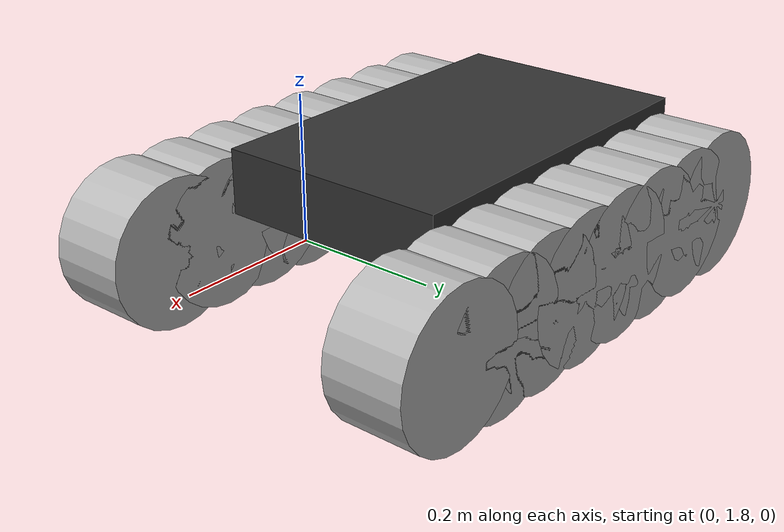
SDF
<?xml version="1.0" ?>
<sdf version="1.6">
<odom_publish_frequency>1</odom_publish_frequency>
    <topic>cmd_vel</topic>
    <model name="raposaNG">
      <pose frame=''>0 2 0.071917 0 0 0</pose>
      <link name='base_link'>
          <pose frame=''>0 0 0 0 -0 0</pose>
          <inertial>
              <pose frame=''>-0.062 0 0.03 1.5708 -0 0</pose>
              <mass>13.14</mass>
              <inertia>
                  <ixx>0.10019</ixx>
                  <ixy>0</ixy>
                  <ixz>0</ixz>
                  <iyy>0.345043</iyy>
                  <iyz>0</iyz>
                  <izz>0.302044</izz>
              </inertia>
          </inertial>
          <collision name='base_link_collision'>
              <pose frame=''>-0.062 0 0.08 0 -0 0</pose>
              <geometry>
                  <box>
                      <size>0.46017 0.2093 0.08</size>
                  </box>
              </geometry>
          </collision>
          <visual name='base_link_visual'>
              <pose frame=''>-0.062 0 0.08 0 -0 0</pose>
              <geometry>
                  <box>
                      <size>0.46017 0.29093 0.08</size>
                  </box>
              </geometry>
              <material>
                <ambient>0.2 0.2 0.2 1</ambient>
                <diffuse>0.2 0.2 0.2 1</diffuse>
                <specular>0.1 0.1 0.1 1</specular>
              </material>
          </visual>
          <self_collide>0</self_collide>
          <gravity>1</gravity>
          <kinematic>0</kinematic>

          <sensor name="imu_sensor" type="imu">
            <always_on>1</always_on>
            <update_rate>1000</update_rate>
          </sensor>
      </link>

      <link name='left_track'>
          <pose frame=''>0 0.1985 0 0 -0 0</pose>
          <inertial>
              <mass>2.06</mass>
              <inertia>
                  <ixx>0.002731</ixx>
                  <ixy>0</ixy>
                  <ixz>0</ixz>
                  <iyy>0.032554</iyy>
                  <iyz>0</iyz>
                  <izz>0.031391</izz>
              </inertia>
          </inertial>
          <collision name='left_track_collision'>
              <pose frame=''>0 0 0.01855 1.5707963267948966  -0 1.5707963267948966</pose>
              <geometry>
                  <box>
                      <size>0.009728 0.018094 0.05</size>
                  </box>
              </geometry>
          </collision>
      </link>
      <joint name='left_track_j' type='fixed'>
          <child>left_track</child>
          <parent>base_link</parent>
      </joint>
      <link name='left_track_wheel1'>
          <pose frame=''>0.25 0.1985 0.01855 0 -0 0</pose>
          <inertial>
              <mass>0.5</mass>
              <inertia>
                  <ixx>0.001</ixx>
                  <ixy>0</ixy>
                  <ixz>0</ixz>
                  <iyy>0.001</iyy>
                  <iyz>0</iyz>
                  <izz>0.001</izz>
              </inertia>
          </inertial>
          <collision name='left_track_wheel1_collision'>
              <pose frame=''>0 0 0 1.5707963267948966 -0 0</pose>
              <geometry>
                  <cylinder>
                      <length>0.09728</length>
                      <radius>0.09047</radius>
                  </cylinder>
              </geometry>
              <surface>
                  <friction>
                      <ode>
                          <mu>0.5</mu>
                          <mu2>3.19858</mu2>
                          <fdir1>0 0 1</fdir1>
                          <slip1>0</slip1>
                          <slip2>0</slip2>
                      </ode>
                  </friction>
              </surface>
          </collision>
          <visual name='left_track_wheel1_visual'>
              <pose frame=''>0 0 0 1.5707963267948966 -0 0</pose>
              <geometry>
                  <cylinder>
                      <length>0.09728</length>
                      <radius>0.09047</radius>
                  </cylinder>
              </geometry>
          </visual>
      </link>
      <joint name='left_track_wheel1_j' type='revolute'>
          <child>left_track_wheel1</child>
          <parent>left_track</parent>
          <axis>
              <xyz>0 1 0</xyz>
              <limit>
                  <lower>-1e+16</lower>
                  <upper>1e+16</upper>
              </limit>
          </axis>
      </joint>
      <link name='left_track_wheel2'>
          <pose frame=''>0.1786 0.1985 0.01855 0 -0 0</pose>
          <inertial>
              <mass>0.5</mass>
              <inertia>
                  <ixx>0.001</ixx>
                  <ixy>0</ixy>
                  <ixz>0</ixz>
                  <iyy>0.001</iyy>
                  <iyz>0</iyz>
                  <izz>0.001</izz>
              </inertia>
          </inertial>
          <collision name='left_track_wheel2_collision'>
              <pose frame=''>0 0 0 1.5707963267948966 -0 0</pose>
              <geometry>
                  <cylinder>
                      <length>0.09728</length>
                      <radius>0.09047</radius>
                  </cylinder>
              </geometry>
              <surface>
                  <friction>
                      <ode>
                          <mu>0.5</mu>
                          <mu2>3.19858</mu2>
                          <fdir1>0 0 1</fdir1>
                          <slip1>0</slip1>
                          <slip2>0</slip2>
                      </ode>
                  </friction>
              </surface>
          </collision>
          <visual name='left_track_wheel2_visual'>
              <pose frame=''>0 0 0 1.5707963267948966 -0 0</pose>
              <geometry>
                  <cylinder>
                      <length>0.09728</length>
                      <radius>0.09047</radius>
                  </cylinder>
              </geometry>
          </visual>
      </link>
      <joint name='left_track_wheel2_j' type='revolute'>
          <child>left_track_wheel2</child>
          <parent>left_track</parent>
          <axis>
              <xyz>0 1 0</xyz>
              <limit>
                  <lower>-1e+16</lower>
                  <upper>1e+16</upper>
              </limit>
          </axis>
      </joint>
      <link name='left_track_wheel3'>
          <pose frame=''>0.1072 0.1985 0.01855 0 -0 0</pose>
          <inertial>
              <mass>0.5</mass>
              <inertia>
                  <ixx>0.001</ixx>
                  <ixy>0</ixy>
                  <ixz>0</ixz>
                  <iyy>0.001</iyy>
                  <iyz>0</iyz>
                  <izz>0.001</izz>
              </inertia>
          </inertial>
          <collision name='left_track_wheel3_collision'>
              <pose frame=''>0 0 0 1.5707963267948966 -0 0</pose>
              <geometry>
                  <cylinder>
                      <length>0.09728</length>
                      <radius>0.09047</radius>
                  </cylinder>
              </geometry>
              <surface>
                  <friction>
                      <ode>
                          <mu>0.5</mu>
                          <mu2>3.19858</mu2>
                          <fdir1>0 0 1</fdir1>
                          <slip1>0</slip1>
                          <slip2>0</slip2>
                      </ode>
                  </friction>
              </surface>
          </collision>
          <visual name='left_track_wheel3_visual'>
              <pose frame=''>0 0 0 1.5707963267948966 -0 0</pose>
              <geometry>
                  <cylinder>
                      <length>0.09728</length>
                      <radius>0.09047</radius>
                  </cylinder>
              </geometry>
          </visual>
      </link>
      <joint name='left_track_wheel3_j' type='revolute'>
          <child>left_track_wheel3</child>
          <parent>left_track</parent>
          <axis>
              <xyz>0 1 0</xyz>
              <limit>
                  <lower>-1e+16</lower>
                  <upper>1e+16</upper>
              </limit>
          </axis>
      </joint>
      <link name='left_track_wheel4'>
          <pose frame=''>-0.25 0.1985 0.01855 0 -0 0</pose>
          <inertial>
              <mass>0.5</mass>
              <inertia>
                  <ixx>0.001</ixx>
                  <ixy>0</ixy>
                  <ixz>0</ixz>
                  <iyy>0.001</iyy>
                  <iyz>0</iyz>
                  <izz>0.001</izz>
              </inertia>
          </inertial>
          <collision name='left_track_wheel4_collision'>
              <pose frame=''>0 0 0 1.5707963267948966 -0 0</pose>
              <geometry>
                  <cylinder>
                      <length>0.09728</length>
                      <radius>0.09047</radius>
                  </cylinder>
              </geometry>
              <surface>
                  <friction>
                      <ode>
                          <mu>0.5</mu>
                          <mu2>3.19858</mu2>
                          <fdir1>0 0 1</fdir1>
                          <slip1>0</slip1>
                          <slip2>0</slip2>
                      </ode>
                  </friction>
              </surface>
          </collision>
          <visual name='left_track_wheel4_visual'>
              <pose frame=''>0 0 0 1.5707963267948966 -0 0</pose>
              <geometry>
                  <cylinder>
                      <length>0.09728</length>
                      <radius>0.09047</radius>
                  </cylinder>
              </geometry>
          </visual>
      </link>
      <joint name='left_track_wheel4_j' type='revolute'>
          <child>left_track_wheel4</child>
          <parent>left_track</parent>
          <axis>
              <xyz>0 1 0</xyz>
              <limit>
                  <lower>-1e+16</lower>
                  <upper>1e+16</upper>
              </limit>
          </axis>
      </joint>
      <link name='left_track_wheel5'>
          <pose frame=''>-0.0358 0.1985 0.01855 0 -0 0</pose>
          <inertial>
              <mass>0.5</mass>
              <inertia>
                  <ixx>0.001</ixx>
                  <ixy>0</ixy>
                  <ixz>0</ixz>
                  <iyy>0.001</iyy>
                  <iyz>0</iyz>
                  <izz>0.001</izz>
              </inertia>
          </inertial>
          <collision name='left_track_wheel5_collision'>
              <pose frame=''>0 0 0 1.5707963267948966 -0 0</pose>
              <geometry>
                  <cylinder>
                      <length>0.09728</length>
                      <radius>0.09047</radius>
                  </cylinder>
              </geometry>
              <surface>
                  <friction>
                      <ode>
                          <mu>0.5</mu>
                          <mu2>3.19858</mu2>
                          <fdir1>0 0 1</fdir1>
                          <slip1>0</slip1>
                          <slip2>0</slip2>
                      </ode>
                  </friction>
              </surface>
          </collision>
          <visual name='left_track_wheel5_visual'>
              <pose frame=''>0 0 0 1.5707963267948966 -0 0</pose>
              <geometry>
                  <cylinder>
                      <length>0.09728</length>
                      <radius>0.09047</radius>
                  </cylinder>
              </geometry>
          </visual>
      </link>
      <joint name='left_track_wheel5_j' type='revolute'>
          <child>left_track_wheel5</child>
          <parent>left_track</parent>
          <axis>
              <xyz>0 1 0</xyz>
              <limit>
                  <lower>-1e+16</lower>
                  <upper>1e+16</upper>
              </limit>
          </axis>
      </joint>
      <link name='left_track_wheel6'>
          <pose frame=''>-0.1072 0.1985 0.01855 0 -0 0</pose>
          <inertial>
              <mass>0.5</mass>
              <inertia>
                  <ixx>0.001</ixx>
                  <ixy>0</ixy>
                  <ixz>0</ixz>
                  <iyy>0.001</iyy>
                  <iyz>0</iyz>
                  <izz>0.001</izz>
              </inertia>
          </inertial>
          <collision name='left_track_wheel6_collision'>
              <pose frame=''>0 0 0 1.5707963267948966 -0 0</pose>
              <geometry>
                  <cylinder>
                      <length>0.09728</length>
                      <radius>0.09047</radius>
                  </cylinder>
              </geometry>
              <surface>
                  <friction>
                      <ode>
                          <mu>0.5</mu>
                          <mu2>3.19858</mu2>
                          <fdir1>0 0 1</fdir1>
                          <slip1>0</slip1>
                          <slip2>0</slip2>
                      </ode>
                  </friction>
              </surface>
          </collision>
          <visual name='left_track_wheel6_visual'>
              <pose frame=''>0 0 0 1.5707963267948966 -0 0</pose>
              <geometry>
                  <cylinder>
                      <length>0.09728</length>
                      <radius>0.09047</radius>
                  </cylinder>
              </geometry>
          </visual>
          <gravity>1</gravity>
          <velocity_decay/>
          <kinematic>0</kinematic>
      </link>
      <joint name='left_track_wheel6_j' type='revolute'>
          <child>left_track_wheel6</child>
          <parent>left_track</parent>
          <axis>
              <xyz>0 1 0</xyz>
              <limit>
                  <lower>-1e+16</lower>
                  <upper>1e+16</upper>
              </limit>
          </axis>
      </joint>
      <link name='left_track_wheel7'>
          <pose frame=''>-0.1786 0.1985 0.01855 0 -0 0</pose>
          <inertial>
              <mass>0.5</mass>
              <inertia>
                  <ixx>0.001</ixx>
                  <ixy>0</ixy>
                  <ixz>0</ixz>
                  <iyy>0.001</iyy>
                  <iyz>0</iyz>
                  <izz>0.001</izz>
              </inertia>
          </inertial>
          <collision name='left_track_wheel7_collision'>
              <pose frame=''>0 0 0 1.5707963267948966 -0 0</pose>
              <geometry>
                  <cylinder>
                      <length>0.09728</length>
                      <radius>0.09047</radius>
                  </cylinder>
              </geometry>
              <surface>
                  <friction>
                      <ode>
                          <mu>0.5</mu>
                          <mu2>3.19858</mu2>
                          <fdir1>0 0 1</fdir1>
                          <slip1>0</slip1>
                          <slip2>0</slip2>
                      </ode>
                  </friction>
              </surface>
          </collision>
          <visual name='left_track_wheel7_visual'>
              <pose frame=''>0 0 0 1.5707963267948966 -0 0</pose>
              <geometry>
                  <cylinder>
                      <length>0.09728</length>
                      <radius>0.09047</radius>
                  </cylinder>
              </geometry>
          </visual>
      </link>
      <joint name='left_track_wheel7_j' type='revolute'>
          <child>left_track_wheel7</child>
          <parent>left_track</parent>
          <axis>
              <xyz>0 1 0</xyz>
              <limit>
                  <lower>-1e+16</lower>
                  <upper>1e+16</upper>
              </limit>
          </axis>
      </joint>
      <link name='left_track_wheel8'>
          <pose frame=''>0.0358 0.1985 0.01855 0 -0 0</pose>
          <inertial>
              <mass>0.5</mass>
              <inertia>
                  <ixx>0.001</ixx>
                  <ixy>0</ixy>
                  <ixz>0</ixz>
                  <iyy>0.001</iyy>
                  <iyz>0</iyz>
                  <izz>0.001</izz>
              </inertia>
          </inertial>
          <collision name='left_track_wheel8_collision'>
              <pose frame=''>0 0 0 1.5707963267948966 -0 0</pose>
              <geometry>
                  <cylinder>
                      <length>0.09728</length>
                      <radius>0.09047</radius>
                  </cylinder>
              </geometry>
              <surface>
                  <friction>
                      <ode>
                          <mu>0.5</mu>
                          <mu2>3.19858</mu2>
                          <fdir1>0 0 1</fdir1>
                          <slip1>0</slip1>
                          <slip2>0</slip2>
                      </ode>
                  </friction>
              </surface>
          </collision>
          <visual name='left_track_wheel8_visual'>
              <pose frame=''>0 0 0 1.5707963267948966 -0 0</pose>
              <geometry>
                  <cylinder>
                      <length>0.09728</length>
                      <radius>0.09047</radius>
                  </cylinder>
              </geometry>
          </visual>
      </link>
      <joint name='left_track_wheel8_j' type='revolute'>
          <child>left_track_wheel8</child>
          <parent>left_track</parent>
          <axis>
              <xyz>0 1 0</xyz>
              <limit>
                  <lower>-1e+16</lower>
                  <upper>1e+16</upper>
              </limit>
          </axis>
      </joint>

      <link name='right_track'>
          <pose frame=''>0 -0.1985 0 0 -0 0</pose>
          <inertial>
              <mass>2.06</mass>
              <inertia>
                  <ixx>0.002731</ixx>
                  <ixy>0</ixy>
                  <ixz>0</ixz>
                  <iyy>0.032554</iyy>
                  <iyz>0</iyz>
                  <izz>0.031391</izz>
              </inertia>
          </inertial>
          <collision name='right_track_collision'>
              <pose frame=''>0 0 0.01855 1.5707963267948966  -0 1.5707963267948966</pose>
              <geometry>
                  <box>
                      <size>0.009728 0.018094 0.05</size>
                  </box>
              </geometry>
          </collision>
      </link>
      <joint name='right_track_j' type='fixed'>
          <child>right_track</child>
          <parent>base_link</parent>
      </joint>

      <link name='right_track_wheel1'>
          <pose frame=''>0.25 -0.1985 0.01855 0 -0 0</pose>
          <inertial>
              <mass>0.5</mass>
              <inertia>
                  <ixx>0.001</ixx>
                  <ixy>0</ixy>
                  <ixz>0</ixz>
                  <iyy>0.001</iyy>
                  <iyz>0</iyz>
                  <izz>0.001</izz>
              </inertia>
          </inertial>
          <collision name='right_track_wheel1_collision'>
              <pose frame=''>0 0 0 1.5707963267948966 -0 0</pose>
              <geometry>
                  <cylinder>
                      <length>0.09728</length>
                      <radius>0.09047</radius>
                  </cylinder>
              </geometry>
              <surface>
                  <friction>
                      <ode>
                          <mu>0.5</mu>
                          <mu2>3.19858</mu2>
                          <fdir1>0 0 1</fdir1>
                          <slip1>0</slip1>
                          <slip2>0</slip2>
                      </ode>
                  </friction>
              </surface>
          </collision>
          <visual name='right_track_wheel1_visual'>
              <pose frame=''>0 0 0 1.5707963267948966 -0 0</pose>
              <geometry>
                  <cylinder>
                      <length>0.09728</length>
                      <radius>0.09047</radius>
                  </cylinder>
              </geometry>
          </visual>
      </link>
      <joint name='right_track_wheel1_j' type='revolute'>
          <child>right_track_wheel1</child>
          <parent>right_track</parent>
          <axis>
              <xyz>0 1 0</xyz>
              <limit>
                  <lower>-1e+16</lower>
                  <upper>1e+16</upper>
              </limit>
          </axis>
      </joint>
      <link name='right_track_wheel2'>
          <pose frame=''>0.1786 -0.1985 0.01855 0 -0 0</pose>
          <inertial>
              <mass>0.5</mass>
              <inertia>
                  <ixx>0.001</ixx>
                  <ixy>0</ixy>
                  <ixz>0</ixz>
                  <iyy>0.001</iyy>
                  <iyz>0</iyz>
                  <izz>0.001</izz>
              </inertia>
          </inertial>
          <collision name='right_track_wheel2_collision'>
              <pose frame=''>0 0 0 1.5707963267948966 -0 0</pose>
              <geometry>
                  <cylinder>
                      <length>0.09728</length>
                      <radius>0.09047</radius>
                  </cylinder>
              </geometry>
              <surface>
                  <friction>
                      <ode>
                          <mu>0.5</mu>
                          <mu2>3.19858</mu2>
                          <fdir1>0 0 1</fdir1>
                          <slip1>0</slip1>
                          <slip2>0</slip2>
                      </ode>
                  </friction>
              </surface>
          </collision>
          <visual name='right_track_wheel2_visual'>
              <pose frame=''>0 0 0 1.5707963267948966 -0 0</pose>
              <geometry>
                  <cylinder>
                      <length>0.09728</length>
                      <radius>0.09047</radius>
                  </cylinder>
              </geometry>
          </visual>
      </link>
      <joint name='right_track_wheel2_j' type='revolute'>
          <child>right_track_wheel2</child>
          <parent>right_track</parent>
          <axis>
              <xyz>0 1 0</xyz>
              <limit>
                  <lower>-1e+16</lower>
                  <upper>1e+16</upper>
              </limit>
          </axis>
      </joint>
      <link name='right_track_wheel3'>
          <pose frame=''>0.1072 -0.1985 0.01855 0 -0 0</pose>
          <inertial>
              <mass>0.5</mass>
              <inertia>
                  <ixx>0.001</ixx>
                  <ixy>0</ixy>
                  <ixz>0</ixz>
                  <iyy>0.001</iyy>
                  <iyz>0</iyz>
                  <izz>0.001</izz>
              </inertia>
          </inertial>
          <collision name='right_track_wheel3_collision'>
              <pose frame=''>0 0 0 1.5707963267948966 -0 0</pose>
              <geometry>
                  <cylinder>
                      <length>0.09728</length>
                      <radius>0.09047</radius>
                  </cylinder>
              </geometry>
              <surface>
                  <friction>
                      <ode>
                          <mu>0.5</mu>
                          <mu2>3.19858</mu2>
                          <fdir1>0 0 1</fdir1>
                          <slip1>0</slip1>
                          <slip2>0</slip2>
                      </ode>
                  </friction>
              </surface>
          </collision>
          <visual name='right_track_wheel3_visual'>
              <pose frame=''>0 0 0 1.5707963267948966 -0 0</pose>
              <geometry>
                  <cylinder>
                      <length>0.09728</length>
                      <radius>0.09047</radius>
                  </cylinder>
              </geometry>
          </visual>
      </link>
      <joint name='right_track_wheel3_j' type='revolute'>
          <child>right_track_wheel3</child>
          <parent>right_track</parent>
          <axis>
              <xyz>0 1 0</xyz>
              <limit>
                  <lower>-1e+16</lower>
                  <upper>1e+16</upper>
              </limit>
          </axis>
      </joint>
      <link name='right_track_wheel4'>
          <pose frame=''>-0.25 -0.1985 0.01855 0 -0 0</pose>
          <inertial>
              <mass>0.5</mass>
              <inertia>
                  <ixx>0.001</ixx>
                  <ixy>0</ixy>
                  <ixz>0</ixz>
                  <iyy>0.001</iyy>
                  <iyz>0</iyz>
                  <izz>0.001</izz>
              </inertia>
          </inertial>
          <collision name='right_track_wheel4_collision'>
              <pose frame=''>0 0 0 1.5707963267948966 -0 0</pose>
              <geometry>
                  <cylinder>
                      <length>0.09728</length>
                      <radius>0.09047</radius>
                  </cylinder>
              </geometry>
              <surface>
                  <friction>
                      <ode>
                          <mu>0.5</mu>
                          <mu2>3.19858</mu2>
                          <fdir1>0 0 1</fdir1>
                          <slip1>0</slip1>
                          <slip2>0</slip2>
                      </ode>
                  </friction>
              </surface>
          </collision>
          <visual name='right_track_wheel4_visual'>
              <pose frame=''>0 0 0 1.5707963267948966 -0 0</pose>
              <geometry>
                  <cylinder>
                      <length>0.09728</length>
                      <radius>0.09047</radius>
                  </cylinder>
              </geometry>
          </visual>
      </link>
      <joint name='right_track_wheel4_j' type='revolute'>
          <child>right_track_wheel4</child>
          <parent>right_track</parent>
          <axis>
              <xyz>0 1 0</xyz>
              <limit>
                  <lower>-1e+16</lower>
                  <upper>1e+16</upper>
              </limit>
          </axis>
      </joint>
      <link name='right_track_wheel5'>
          <pose frame=''>-0.0358 -0.1985 0.01855 0 -0 0</pose>
          <inertial>
              <mass>0.5</mass>
              <inertia>
                  <ixx>0.001</ixx>
                  <ixy>0</ixy>
                  <ixz>0</ixz>
                  <iyy>0.001</iyy>
                  <iyz>0</iyz>
                  <izz>0.001</izz>
              </inertia>
          </inertial>
          <collision name='right_track_wheel5_collision'>
              <pose frame=''>0 0 0 1.5707963267948966 -0 0</pose>
              <geometry>
                  <cylinder>
                      <length>0.09728</length>
                      <radius>0.09047</radius>
                  </cylinder>
              </geometry>
              <surface>
                  <friction>
                      <ode>
                          <mu>0.5</mu>
                          <mu2>3.19858</mu2>
                          <fdir1>0 0 1</fdir1>
                          <slip1>0</slip1>
                          <slip2>0</slip2>
                      </ode>
                  </friction>
              </surface>
          </collision>
          <visual name='right_track_wheel5_visual'>
              <pose frame=''>0 0 0 1.5707963267948966 -0 0</pose>
              <geometry>
                  <cylinder>
                      <length>0.09728</length>
                      <radius>0.09047</radius>
                  </cylinder>
              </geometry>
          </visual>
      </link>
      <joint name='right_track_wheel5_j' type='revolute'>
          <child>right_track_wheel5</child>
          <parent>right_track</parent>
          <axis>
              <xyz>0 1 0</xyz>
              <limit>
                  <lower>-1e+16</lower>
                  <upper>1e+16</upper>
              </limit>
          </axis>
      </joint>
      <link name='right_track_wheel6'>
          <pose frame=''>-0.1072 -0.1985 0.01855 0 -0 0</pose>
          <inertial>
              <mass>0.5</mass>
              <inertia>
                  <ixx>0.001</ixx>
                  <ixy>0</ixy>
                  <ixz>0</ixz>
                  <iyy>0.001</iyy>
                  <iyz>0</iyz>
                  <izz>0.001</izz>
              </inertia>
          </inertial>
          <collision name='right_track_wheel6_collision'>
              <pose frame=''>0 0 0 1.5707963267948966 -0 0</pose>
              <geometry>
                  <cylinder>
                      <length>0.09728</length>
                      <radius>0.09047</radius>
                  </cylinder>
              </geometry>
              <surface>
                  <friction>
                      <ode>
                          <mu>0.5</mu>
                          <mu2>3.19858</mu2>
                          <fdir1>0 0 1</fdir1>
                          <slip1>0</slip1>
                          <slip2>0</slip2>
                      </ode>
                  </friction>
              </surface>
          </collision>
          <visual name='right_track_wheel6_visual'>
              <pose frame=''>0 0 0 1.5707963267948966 -0 0</pose>
              <geometry>
                  <cylinder>
                      <length>0.09728</length>
                      <radius>0.09047</radius>
                  </cylinder>
              </geometry>
          </visual>
      </link>
      <joint name='right_track_wheel6_j' type='revolute'>
          <child>right_track_wheel6</child>
          <parent>right_track</parent>
          <axis>
              <xyz>0 1 0</xyz>
              <limit>
                  <lower>-1e+16</lower>
                  <upper>1e+16</upper>
              </limit>
          </axis>
      </joint>
      <link name='right_track_wheel7'>
          <pose frame=''>-0.1786 -0.1985 0.01855 0 -0 0</pose>
          <inertial>
              <mass>0.5</mass>
              <inertia>
                  <ixx>0.001</ixx>
                  <ixy>0</ixy>
                  <ixz>0</ixz>
                  <iyy>0.001</iyy>
                  <iyz>0</iyz>
                  <izz>0.001</izz>
              </inertia>
          </inertial>
          <collision name='right_track_wheel7_collision'>
              <pose frame=''>0 0 0 1.5707963267948966 -0 0</pose>
              <geometry>
                  <cylinder>
                      <length>0.09728</length>
                      <radius>0.09047</radius>
                  </cylinder>
              </geometry>
              <surface>
                  <friction>
                      <ode>
                          <mu>0.5</mu>
                          <mu2>3.19858</mu2>
                          <fdir1>0 0 1</fdir1>
                          <slip1>0</slip1>
                          <slip2>0</slip2>
                      </ode>
                  </friction>
              </surface>
          </collision>
          <visual name='right_track_wheel7_visual'>
              <pose frame=''>0 0 0 1.5707963267948966 -0 0</pose>
              <geometry>
                  <cylinder>
                      <length>0.09728</length>
                      <radius>0.09047</radius>
                  </cylinder>
              </geometry>
          </visual>
      </link>
      <joint name='right_track_wheel7_j' type='revolute'>
          <child>right_track_wheel7</child>
          <parent>right_track</parent>
          <axis>
              <xyz>0 1 0</xyz>
              <limit>
                  <lower>-1e+16</lower>
                  <upper>1e+16</upper>
              </limit>
          </axis>
      </joint>
      <link name='right_track_wheel8'>
          <pose frame=''>0.0358 -0.1985 0.01855 0 -0 0</pose>
          <inertial>
              <mass>0.5</mass>
              <inertia>
                  <ixx>0.001</ixx>
                  <ixy>0</ixy>
                  <ixz>0</ixz>
                  <iyy>0.001</iyy>
                  <iyz>0</iyz>
                  <izz>0.001</izz>
              </inertia>
          </inertial>
          <collision name='right_track_wheel8_collision'>
              <pose frame=''>0 0 0 1.5707963267948966 -0 0</pose>
              <geometry>
                  <cylinder>
                      <length>0.09728</length>
                      <radius>0.09047</radius>
                  </cylinder>
              </geometry>
              <surface>
                  <friction>
                      <ode>
                          <mu>0.5</mu>
                          <mu2>3.19858</mu2>
                          <fdir1>0 0 1</fdir1>
                          <slip1>0</slip1>
                          <slip2>0</slip2>
                      </ode>
                  </friction>
              </surface>
          </collision>
          <visual name='right_track_wheel8_visual'>
              <pose frame=''>0 0 0 1.5707963267948966 -0 0</pose>
              <geometry>
                  <cylinder>
                      <length>0.09728</length>
                      <radius>0.09047</radius>
                  </cylinder>
              </geometry>
          </visual>
      </link>
      <joint name='right_track_wheel8_j' type='revolute'>
          <child>right_track_wheel8</child>
          <parent>right_track</parent>
          <axis>
              <xyz>0 1 0</xyz>
              <limit>
                  <lower>-1e+16</lower>
                  <upper>1e+16</upper>
              </limit>
          </axis>
      </joint>

      <!-- Track drive -->
      <plugin filename="ignition-gazebo-diff-drive-system"
              name="ignition::gazebo::systems::DiffDrive">
        <left_joint>left_track_wheel1_j</left_joint>
        <right_joint>right_track_wheel1_j</right_joint>
        <left_joint>left_track_wheel2_j</left_joint>
        <right_joint>right_track_wheel2_j</right_joint>
        <left_joint>left_track_wheel3_j</left_joint>
        <right_joint>right_track_wheel3_j</right_joint>
        <left_joint>left_track_wheel4_j</left_joint>
        <right_joint>right_track_wheel4_j</right_joint>
        <left_joint>left_track_wheel5_j</left_joint>
        <right_joint>right_track_wheel5_j</right_joint>
        <left_joint>left_track_wheel6_j</left_joint>
        <right_joint>right_track_wheel6_j</right_joint>
        <left_joint>left_track_wheel7_j</left_joint>
        <right_joint>right_track_wheel7_j</right_joint>
        <left_joint>left_track_wheel8_j</left_joint>
        <right_joint>right_track_wheel8_j</right_joint>
        <wheel_separation>0.55</wheel_separation>
        <wheel_radius>0.09047</wheel_radius>
        <odom_publish_frequency>100</odom_publish_frequency>
        <topic>cmd_vel</topic>
      </plugin>

    </model>

</sdf>
